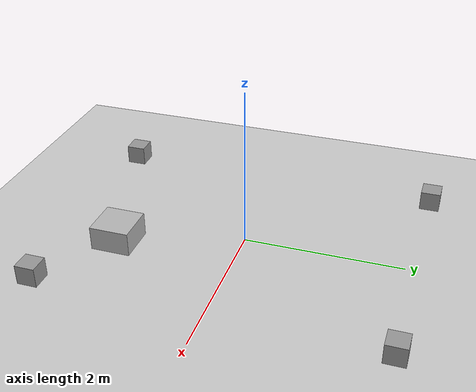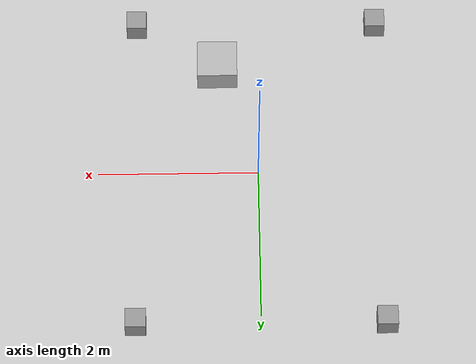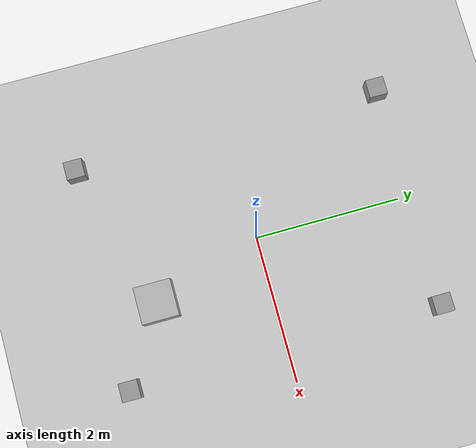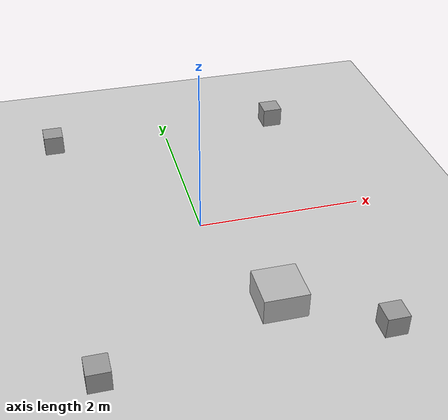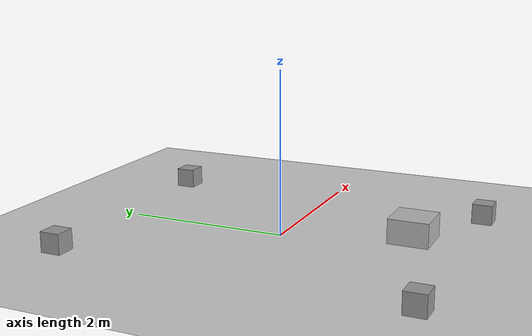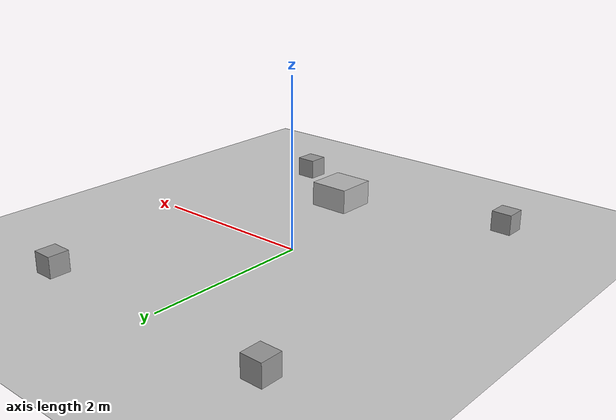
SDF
<sdf version="1.7">
 <world name="default">
  <model name="ground_plane">
   <static>1</static>
   <link name="link">
    <collision name="collision">
     <geometry><plane><normal>0 0 1</normal><size>100 100</size></plane></geometry>
     <surface><friction><ode><mu>100</mu><mu2>50</mu2></ode></friction></surface>
    </collision>
    <visual name="visual">
     <cast_shadows>0</cast_shadows>
     <geometry><plane><normal>0 0 1</normal><size>100 100</size></plane></geometry>
     <material>
      <script><uri>file://media/materials/scripts/gazebo.material</uri><name>Gazebo/Grey</name></script>
     </material>
    </visual>
   </link>
  </model>
  <model name="qr_box_right_foot_1">
   <pose>0.5 -1.5 0.05 0 0 0</pose>
   <include><uri>model://qr_box_1</uri></include>
  </model>
  <light name="sun" type="directional">
   <pose>0 0 10 0 -0 0</pose>
   <diffuse>0.8 0.8 0.8 1</diffuse>
   <specular>0.2 0.2 0.2 1</specular>
   <attenuation>
    <range>1000</range>
    <constant>0.9</constant>
    <linear>0.01</linear>
    <quadratic>0.001</quadratic>
   </attenuation>
   <direction>-0.5 0.1 -0.9</direction>
   <spot><inner_angle>0</inner_angle><outer_angle>0</outer_angle><falloff>0</falloff></spot>
  </light>
  <scene><shadows>0</shadows><ambient>0.4 0.4 0.4 1</ambient><background>0.7 0.7 0.7 1</background></scene>
  <physics type="ode">
   <real_time_update_rate>1000</real_time_update_rate>
   <max_step_size>0.001</max_step_size>
   <real_time_factor>1</real_time_factor>
   <ode>
    <solver>
     <type>quick</type>
     <iters>150</iters>
     <precon_iters>0</precon_iters>
     <sor>1.4</sor>
     <use_dynamic_moi_rescaling>1</use_dynamic_moi_rescaling>
    </solver>
    <constraints>
     <cfm>1e-05</cfm>
     <erp>0.2</erp>
     <contact_max_correcting_vel>2000</contact_max_correcting_vel>
     <contact_surface_layer>0.01</contact_surface_layer>
    </constraints>
   </ode>
  </physics>
  <gravity>0 0 -9.8</gravity>
  <magnetic_field>6e-06 2.3e-05 -4.2e-05</magnetic_field>
  <atmosphere type="adiabatic"/>
  <audio><device>default</device></audio>
  <spherical_coordinates>
   <surface_model>EARTH_WGS84</surface_model>
   <latitude_deg>0</latitude_deg>
   <longitude_deg>0</longitude_deg>
   <elevation>0</elevation>
   <heading_deg>0</heading_deg>
  </spherical_coordinates>
  <model name="qr_box_turtlebot3_world_0">
   <link name="link_0">
    <inertial>
     <mass>1</mass>
     <inertia>
      <ixx>0.166667</ixx>
      <ixy>0</ixy>
      <ixz>0</ixz>
      <iyy>0.166667</iyy>
      <iyz>0</iyz>
      <izz>0.166667</izz>
     </inertia>
    </inertial>
    <pose>-1.51562 -2.11591 0 0 -0 0</pose>
    <visual name="visual">
     <geometry><box><size>0.25 0.25 0.25</size></box></geometry>
     <material>
      <lighting>1</lighting>
      <script><uri>file://media/materials/scripts/gazebo.material</uri><name>Gazebo/Grey</name></script>
      <shader type="pixel"><normal_map>__default__</normal_map></shader>
      <ambient>0.3 0.3 0.3 1</ambient>
      <diffuse>0.7 0.7 0.7 1</diffuse>
      <specular>0.01 0.01 0.01 1</specular>
      <emissive>0 0 0 1</emissive>
     </material>
    </visual>
   </link>
   <link name="link_0_clone">
    <inertial>
     <mass>0</mass>
     <inertia><ixx>0</ixx><ixy>0</ixy><ixz>0</ixz><iyy>0</iyy><iyz>0</iyz><izz>0</izz></inertia>
    </inertial>
    <pose>1.51917 -2.11808 0 0 -0 0</pose>
    <visual name="visual">
     <geometry><box><size>0.25 0.25 0.25</size></box></geometry>
     <material>
      <lighting>1</lighting>
      <script><uri>file://media/materials/scripts/gazebo.material</uri><name>Gazebo/Grey</name></script>
      <shader type="pixel"><normal_map>__default__</normal_map></shader>
      <ambient>0.3 0.3 0.3 1</ambient>
      <diffuse>0.7 0.7 0.7 1</diffuse>
      <specular>0.01 0.01 0.01 1</specular>
      <emissive>0 0 0 1</emissive>
     </material>
    </visual>
   </link>
   <link name="link_0_clone_clone">
    <inertial>
     <mass>3</mass>
     <inertia><ixx>0</ixx><ixy>0</ixy><ixz>0</ixz><iyy>0</iyy><iyz>0</iyz><izz>0</izz></inertia>
    </inertial>
    <pose>1.5253 2.11673 0 0 -0 0</pose>
    <visual name="visual">
     <geometry><box><size>0.25 0.25 0.25</size></box></geometry>
     <material>
      <lighting>1</lighting>
      <script><uri>file://media/materials/scripts/gazebo.material</uri><name>Gazebo/Grey</name></script>
      <shader type="pixel"><normal_map>__default__</normal_map></shader>
      <ambient>0.3 0.3 0.3 1</ambient>
      <diffuse>0.7 0.7 0.7 1</diffuse>
      <specular>0.01 0.01 0.01 1</specular>
      <emissive>0 0 0 1</emissive>
     </material>
    </visual>
   </link>
   <link name="link_0_clone_clone_0">
    <inertial>
     <mass>4</mass>
     <inertia><ixx>0</ixx><ixy>0</ixy><ixz>0</ixz><iyy>0</iyy><iyz>0</iyz><izz>0</izz></inertia>
    </inertial>
    <pose>-1.52883 2.11727 0 0 -0 0</pose>
    <visual name="visual">
     <geometry><box><size>0.25 0.25 0.25</size></box></geometry>
     <material>
      <lighting>1</lighting>
      <script><uri>file://media/materials/scripts/gazebo.material</uri><name>Gazebo/Grey</name></script>
      <shader type="pixel"><normal_map>__default__</normal_map></shader>
      <ambient>0.3 0.3 0.3 1</ambient>
      <diffuse>0.7 0.7 0.7 1</diffuse>
      <specular>0.01 0.01 0.01 1</specular>
      <emissive>0 0 0 1</emissive>
     </material>
    </visual>
   </link>
   <static>0</static>
   <pose>0.000955 -0.002727 0.125 0 -0 0</pose>
  </model>
 </world>
</sdf>

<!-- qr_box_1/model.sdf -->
<sdf version='1.7'>
  <model name='qr_box_1'>
  <link name='link'>
    <visual name='visual'>
      <geometry>
        <box>
          <size>0.5 0.5 0.5</size> </box>
      </geometry>

      <material>
        <script>
          <uri>model://qr_box_1/materials/scripts</uri>
          <uri>model://qr_box_1/materials/textures</uri>
          <name>Custom_QR/Box1</name>
        </script>
      </material>
      </visual>
    <collision name='collision'>
      <geometry>
        <box>
          <size>0.5 0.5 0.5</size>
        </box>
      </geometry>
    </collision>
  </link>
  <static>true</static> </model>
</sdf>
